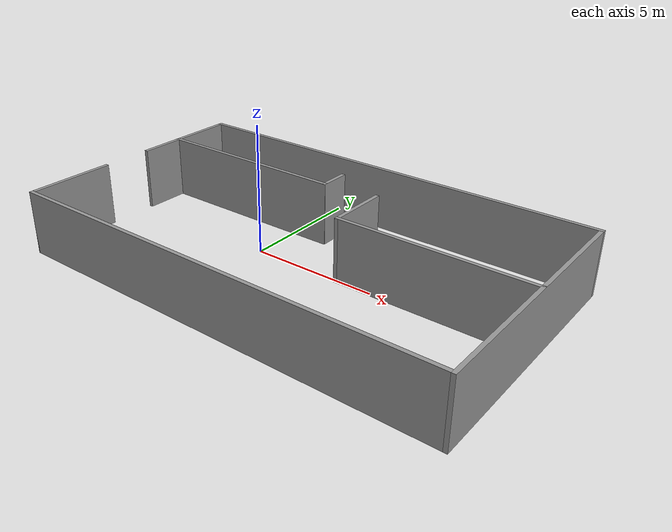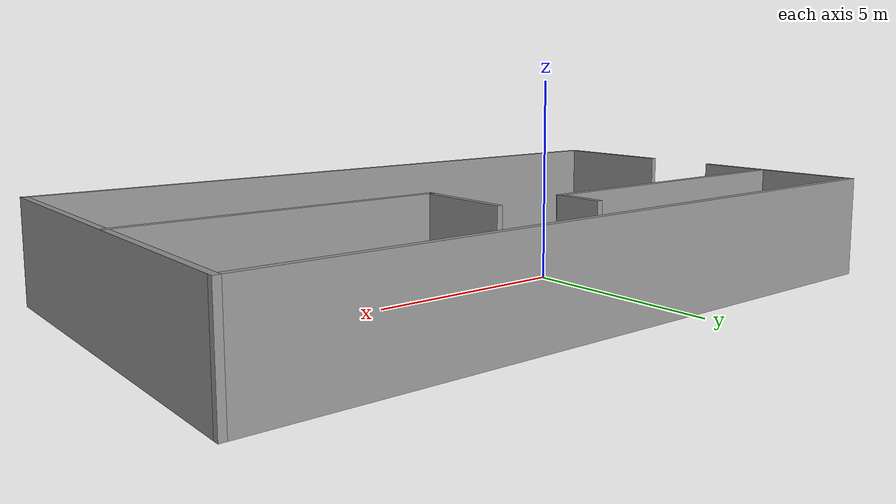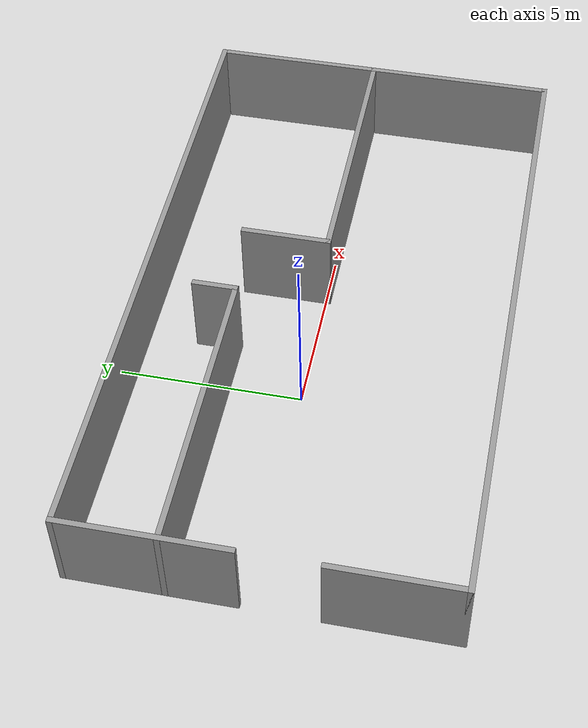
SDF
<?xml version='1.0'?>
<sdf version='1.6'>
  <model name='외벽'>
    <pose frame=''>2.27969 -0.303444 0 0 -0 0</pose>
    <link name='Wall_1'>
      <collision name='Wall_1_Collision'>
        <geometry>
          <box>
            <size>17.5 0.15 2.5</size>
          </box>
        </geometry>
        <pose frame=''>0 0 1.25 0 -0 0</pose>
      </collision>
      <visual name='Wall_1_Visual'>
        <pose frame=''>0 0 1.25 0 -0 0</pose>
        <geometry>
          <box>
            <size>17.5 0.15 2.5</size>
          </box>
        </geometry>
        <material>
          <script>
            <uri>file://media/materials/scripts/gazebo.material</uri>
            <name>Gazebo/Grey</name>
          </script>
          <ambient>1 1 1 1</ambient>
        </material>
        <meta>
          <layer>0</layer>
        </meta>
      </visual>
      <pose frame=''>5.6e-05 -4.925 0 0 -0 0</pose>
    </link>
    <link name='Wall_10'>
      <collision name='Wall_10_Collision'>
        <geometry>
          <box>
            <size>1.25 0.15 2.5</size>
          </box>
        </geometry>
        <pose frame=''>0 0 1.25 0 -0 0</pose>
      </collision>
      <visual name='Wall_10_Visual'>
        <pose frame=''>0 0 1.25 0 -0 0</pose>
        <geometry>
          <box>
            <size>1.25 0.15 2.5</size>
          </box>
        </geometry>
        <material>
          <script>
            <uri>file://media/materials/scripts/gazebo.material</uri>
            <name>Gazebo/Grey</name>
          </script>
          <ambient>1 1 1 1</ambient>
        </material>
        <meta>
          <layer>0</layer>
        </meta>
      </visual>
      <pose frame=''>-0.825057 2.91103 0 0 -0 1.5708</pose>
    </link>
    <link name='Wall_13'>
      <collision name='Wall_13_Collision'>
        <geometry>
          <box>
            <size>2.5 0.15 2.5</size>
          </box>
        </geometry>
        <pose frame=''>0 0 1.25 0 -0 0</pose>
      </collision>
      <visual name='Wall_13_Visual'>
        <pose frame=''>0 0 1.25 0 -0 0</pose>
        <geometry>
          <box>
            <size>2.5 0.15 2.5</size>
          </box>
        </geometry>
        <material>
          <script>
            <uri>file://media/materials/scripts/gazebo.material</uri>
            <name>Gazebo/Grey</name>
          </script>
          <ambient>1 1 1 1</ambient>
        </material>
        <meta>
          <layer>0</layer>
        </meta>
      </visual>
      <pose frame=''>1.30982 1.4373 0 0 -0 -1.5708</pose>
    </link>
    <link name='Wall_14'>
      <collision name='Wall_14_Collision'>
        <geometry>
          <box>
            <size>7.5 0.15 2.5</size>
          </box>
        </geometry>
        <pose frame=''>0 0 1.25 0 -0 0</pose>
      </collision>
      <visual name='Wall_14_Visual'>
        <pose frame=''>0 0 1.25 0 -0 0</pose>
        <geometry>
          <box>
            <size>7.5 0.15 2.5</size>
          </box>
        </geometry>
        <material>
          <script>
            <uri>file://media/materials/scripts/gazebo.material</uri>
            <name>Gazebo/Grey</name>
          </script>
          <ambient>1 1 1 1</ambient>
        </material>
        <meta>
          <layer>0</layer>
        </meta>
      </visual>
      <pose frame=''>4.98482 0.262301 0 0 -0 0</pose>
    </link>
    <link name='Wall_2'>
      <collision name='Wall_2_Collision'>
        <geometry>
          <box>
            <size>10 0.15 2.5</size>
          </box>
        </geometry>
        <pose frame=''>0 0 1.25 0 -0 0</pose>
      </collision>
      <visual name='Wall_2_Visual'>
        <pose frame=''>0 0 1.25 0 -0 0</pose>
        <geometry>
          <box>
            <size>10 0.15 2.5</size>
          </box>
        </geometry>
        <material>
          <script>
            <uri>file://media/materials/scripts/gazebo.material</uri>
            <name>Gazebo/Grey</name>
          </script>
          <ambient>1 1 1 1</ambient>
        </material>
        <meta>
          <layer>0</layer>
        </meta>
      </visual>
      <pose frame=''>8.67506 0 0 0 -0 1.5708</pose>
    </link>
    <link name='Wall_3'>
      <collision name='Wall_3_Collision'>
        <geometry>
          <box>
            <size>17.5 0.15 2.5</size>
          </box>
        </geometry>
        <pose frame=''>0 0 1.25 0 -0 0</pose>
      </collision>
      <visual name='Wall_3_Visual'>
        <pose frame=''>0 0 1.25 0 -0 0</pose>
        <geometry>
          <box>
            <size>17.5 0.15 2.5</size>
          </box>
        </geometry>
        <material>
          <script>
            <uri>file://media/materials/scripts/gazebo.material</uri>
            <name>Gazebo/Grey</name>
          </script>
          <ambient>1 1 1 1</ambient>
        </material>
        <meta>
          <layer>0</layer>
        </meta>
      </visual>
      <pose frame=''>5.6e-05 4.925 0 0 -0 3.14159</pose>
    </link>
    <link name='Wall_4'>
      <collision name='Wall_4_Collision'>
        <geometry>
          <box>
            <size>4.5 0.15 2.5</size>
          </box>
        </geometry>
        <pose frame=''>0 0 1.25 0 -0 0</pose>
      </collision>
      <visual name='Wall_4_Visual'>
        <pose frame=''>0 0 1.25 0 -0 0</pose>
        <geometry>
          <box>
            <size>4.5 0.15 2.5</size>
          </box>
        </geometry>
        <material>
          <script>
            <uri>file://media/materials/scripts/gazebo.material</uri>
            <name>Gazebo/Grey</name>
          </script>
          <ambient>1 1 1 1</ambient>
        </material>
        <meta>
          <layer>0</layer>
        </meta>
      </visual>
      <pose frame=''>-8.67494 2.75 0 0 -0 -1.5708</pose>
    </link>
    <link name='Wall_6'>
      <collision name='Wall_6_Collision'>
        <geometry>
          <box>
            <size>3.5 0.15 2.5</size>
          </box>
        </geometry>
        <pose frame=''>0 0 1.25 0 -0 0</pose>
      </collision>
      <visual name='Wall_6_Visual'>
        <pose frame=''>0 0 1.25 0 -0 0</pose>
        <geometry>
          <box>
            <size>3.5 0.15 2.5</size>
          </box>
        </geometry>
        <material>
          <script>
            <uri>file://media/materials/scripts/gazebo.material</uri>
            <name>Gazebo/Grey</name>
          </script>
          <ambient>1 1 1 1</ambient>
        </material>
        <meta>
          <layer>0</layer>
        </meta>
      </visual>
      <pose frame=''>-8.67494 -3.25 0 0 -0 -1.5708</pose>
    </link>
    <link name='Wall_9'>
      <collision name='Wall_9_Collision'>
        <geometry>
          <box>
            <size>8 0.15 2.5</size>
          </box>
        </geometry>
        <pose frame=''>0 0 1.25 0 -0 0</pose>
      </collision>
      <visual name='Wall_9_Visual'>
        <pose frame=''>0 0 1.25 0 -0 0</pose>
        <geometry>
          <box>
            <size>8 0.15 2.5</size>
          </box>
        </geometry>
        <material>
          <script>
            <uri>file://media/materials/scripts/gazebo.material</uri>
            <name>Gazebo/Grey</name>
          </script>
          <ambient>1 1 1 1</ambient>
        </material>
        <meta>
          <layer>0</layer>
        </meta>
      </visual>
      <pose frame=''>-4.75006 2.3478 0 0 -0 0</pose>
    </link>
    <static>1</static>
  </model>
</sdf>
